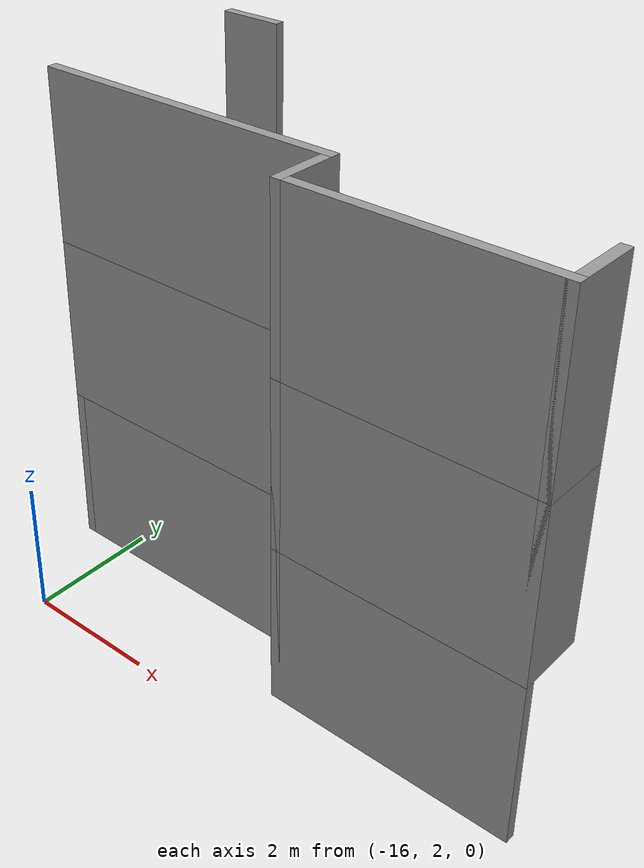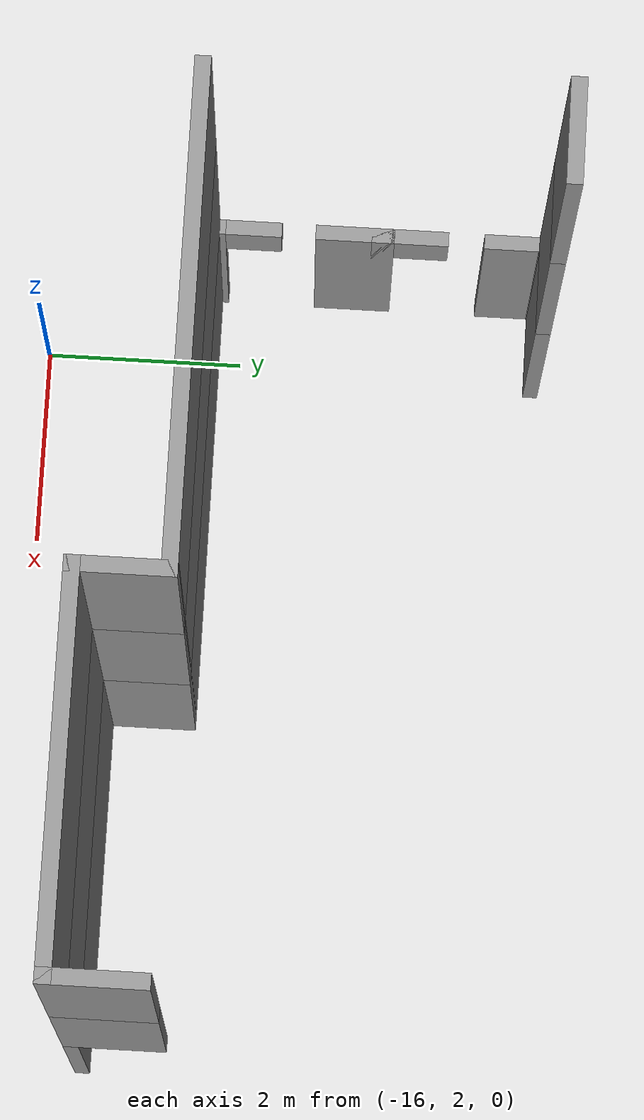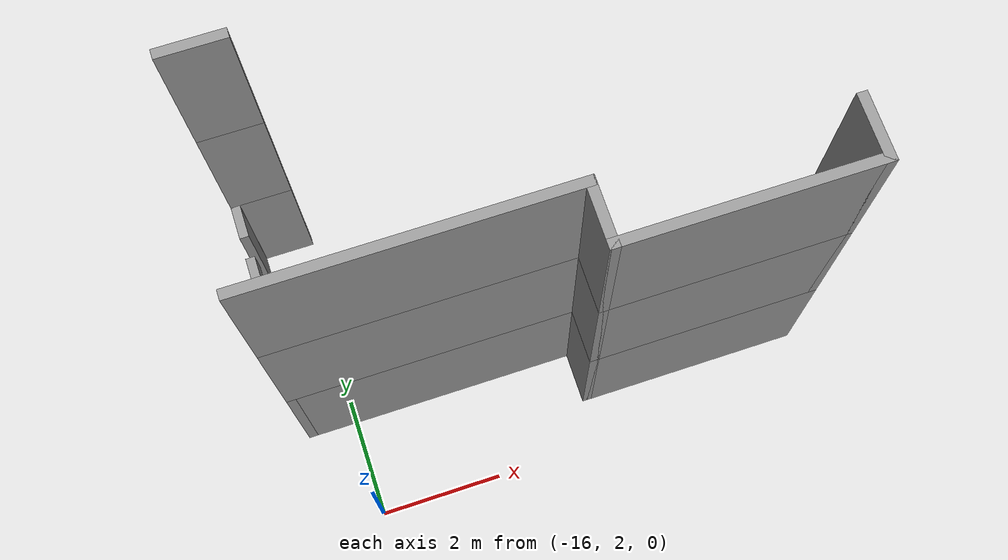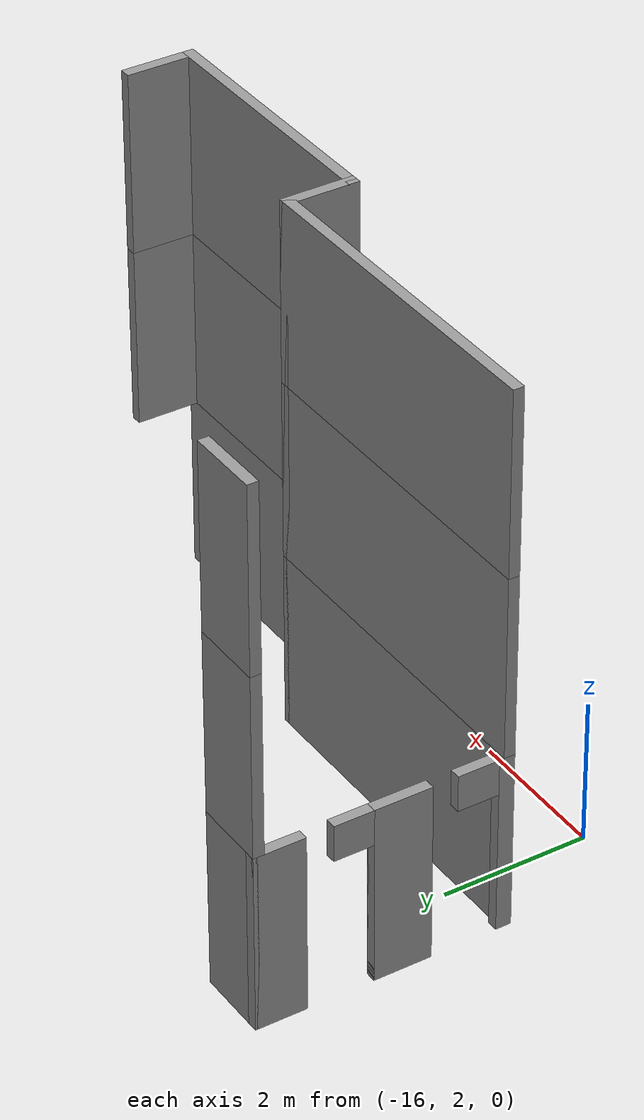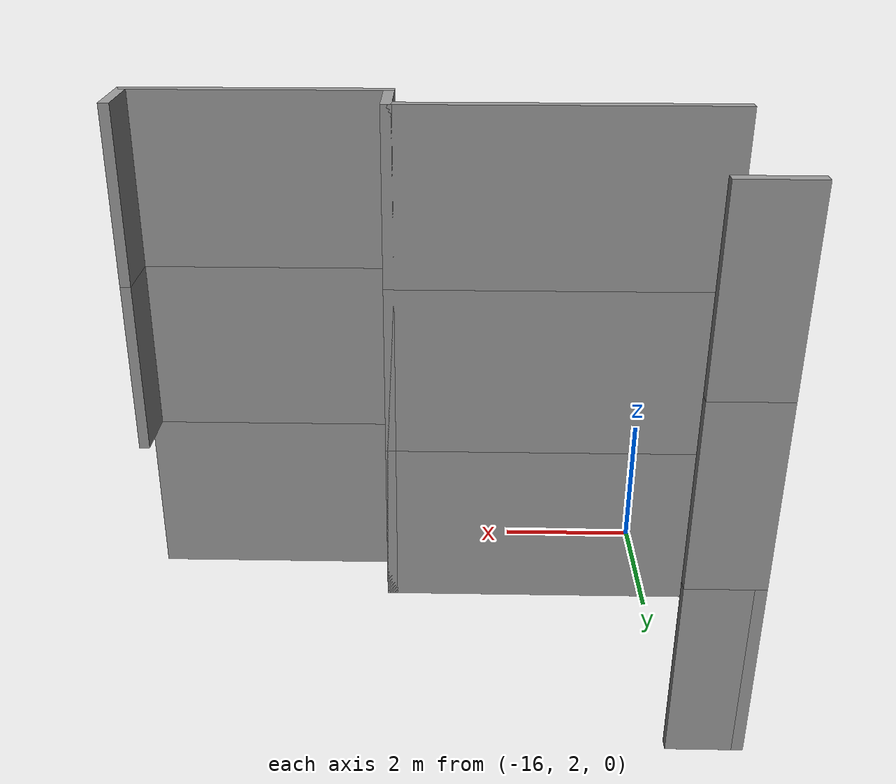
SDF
<sdf version="1.7">
 <model name="mapagazebo">
  <pose>-4.67869 9.01252 0 0 -0 0</pose>
  <link name="Wall_1107">
   <collision name="Wall_1107_Collision">
    <geometry><box><size>1 0.15 2.5</size></box></geometry>
    <pose>0 0 1.25 0 -0 0</pose>
   </collision>
   <visual name="Wall_1107_Visual">
    <pose>0 0 1.25 0 -0 0</pose>
    <geometry><box><size>1 0.15 2.5</size></box></geometry>
    <material>
     <script><uri>file://media/materials/scripts/gazebo.material</uri><name>Gazebo/Grey</name></script>
     <ambient>1 1 1 1</ambient>
    </material>
    <meta><layer>1</layer></meta>
   </visual>
   <pose>-11.6596 -1.95647 2.5 0 -0 0</pose>
  </link>
  <link name="Wall_1140">
   <collision name="Wall_1140_Collision">
    <geometry><box><size>4.75 0.15 2.5</size></box></geometry>
    <pose>0 0 1.25 0 -0 0</pose>
   </collision>
   <visual name="Wall_1140_Visual">
    <pose>0 0 1.25 0 -0 0</pose>
    <geometry><box><size>4.75 0.15 2.5</size></box></geometry>
    <material>
     <script><uri>file://media/materials/scripts/gazebo.material</uri><name>Gazebo/Grey</name></script>
     <ambient>1 1 1 1</ambient>
    </material>
    <meta><layer>1</layer></meta>
   </visual>
   <pose>-9.78459 -5.30647 2.5 0 -0 0</pose>
  </link>
  <link name="Wall_1141">
   <collision name="Wall_1141_Collision">
    <geometry><box><size>1 0.15 2.5</size></box></geometry>
    <pose>0 0 1.25 0 -0 0</pose>
   </collision>
   <visual name="Wall_1141_Visual">
    <pose>0 0 1.25 0 -0 0</pose>
    <geometry><box><size>1 0.15 2.5</size></box></geometry>
    <material>
     <script><uri>file://media/materials/scripts/gazebo.material</uri><name>Gazebo/Grey</name></script>
     <ambient>1 1 1 1</ambient>
    </material>
    <meta><layer>1</layer></meta>
   </visual>
   <pose>-7.48459 -5.73147 2.5 0 -0 -1.5708</pose>
  </link>
  <link name="Wall_1142">
   <collision name="Wall_1142_Collision">
    <geometry><box><size>3.75 0.15 2.5</size></box></geometry>
    <pose>0 0 1.25 0 -0 0</pose>
   </collision>
   <visual name="Wall_1142_Visual">
    <pose>0 0 1.25 0 -0 0</pose>
    <geometry><box><size>3.75 0.15 2.5</size></box></geometry>
    <material>
     <script><uri>file://media/materials/scripts/gazebo.material</uri><name>Gazebo/Grey</name></script>
     <ambient>1 1 1 1</ambient>
    </material>
    <meta><layer>1</layer></meta>
   </visual>
   <pose>-5.68459 -6.15647 2.5 0 -0 0</pose>
  </link>
  <link name="Wall_1143">
   <collision name="Wall_1143_Collision">
    <geometry><box><size>1 0.15 2.5</size></box></geometry>
    <pose>0 0 1.25 0 -0 0</pose>
   </collision>
   <visual name="Wall_1143_Visual">
    <pose>0 0 1.25 0 -0 0</pose>
    <geometry><box><size>1 0.15 2.5</size></box></geometry>
    <material>
     <script><uri>file://media/materials/scripts/gazebo.material</uri><name>Gazebo/Grey</name></script>
     <ambient>1 1 1 1</ambient>
    </material>
    <meta><layer>1</layer></meta>
   </visual>
   <pose>-3.88459 -5.73147 2.5 0 -0 1.5708</pose>
  </link>
  <link name="Wall_1731">
   <collision name="Wall_1731_Collision">
    <geometry><box><size>1 0.15 2.5</size></box></geometry>
    <pose>0 0 1.25 0 -0 0</pose>
   </collision>
   <visual name="Wall_1731_Visual">
    <pose>0 0 1.25 0 -0 0</pose>
    <geometry><box><size>1 0.15 2.5</size></box></geometry>
    <material>
     <script><uri>file://media/materials/scripts/gazebo.material</uri><name>Gazebo/Grey</name></script>
     <ambient>1 1 1 1</ambient>
    </material>
    <meta><layer>2</layer></meta>
   </visual>
   <pose>-11.6596 -1.95647 5 0 -0 0</pose>
  </link>
  <link name="Wall_1764">
   <collision name="Wall_1764_Collision">
    <geometry><box><size>4.75 0.15 2.5</size></box></geometry>
    <pose>0 0 1.25 0 -0 0</pose>
   </collision>
   <visual name="Wall_1764_Visual">
    <pose>0 0 1.25 0 -0 0</pose>
    <geometry><box><size>4.75 0.15 2.5</size></box></geometry>
    <material>
     <script><uri>file://media/materials/scripts/gazebo.material</uri><name>Gazebo/Grey</name></script>
     <ambient>1 1 1 1</ambient>
    </material>
    <meta><layer>2</layer></meta>
   </visual>
   <pose>-9.78459 -5.30647 5 0 -0 0</pose>
  </link>
  <link name="Wall_1765">
   <collision name="Wall_1765_Collision">
    <geometry><box><size>1 0.15 2.5</size></box></geometry>
    <pose>0 0 1.25 0 -0 0</pose>
   </collision>
   <visual name="Wall_1765_Visual">
    <pose>0 0 1.25 0 -0 0</pose>
    <geometry><box><size>1 0.15 2.5</size></box></geometry>
    <material>
     <script><uri>file://media/materials/scripts/gazebo.material</uri><name>Gazebo/Grey</name></script>
     <ambient>1 1 1 1</ambient>
    </material>
    <meta><layer>2</layer></meta>
   </visual>
   <pose>-7.48459 -5.73147 5 0 -0 -1.5708</pose>
  </link>
  <link name="Wall_1766">
   <collision name="Wall_1766_Collision">
    <geometry><box><size>3.75 0.15 2.5</size></box></geometry>
    <pose>0 0 1.25 0 -0 0</pose>
   </collision>
   <visual name="Wall_1766_Visual">
    <pose>0 0 1.25 0 -0 0</pose>
    <geometry><box><size>3.75 0.15 2.5</size></box></geometry>
    <material>
     <script><uri>file://media/materials/scripts/gazebo.material</uri><name>Gazebo/Grey</name></script>
     <ambient>1 1 1 1</ambient>
    </material>
    <meta><layer>2</layer></meta>
   </visual>
   <pose>-5.68459 -6.15647 5 0 -0 0</pose>
  </link>
  <link name="Wall_1767">
   <collision name="Wall_1767_Collision">
    <geometry><box><size>1 0.15 2.5</size></box></geometry>
    <pose>0 0 1.25 0 -0 0</pose>
   </collision>
   <visual name="Wall_1767_Visual">
    <pose>0 0 1.25 0 -0 0</pose>
    <geometry><box><size>1 0.15 2.5</size></box></geometry>
    <material>
     <script><uri>file://media/materials/scripts/gazebo.material</uri><name>Gazebo/Grey</name></script>
     <ambient>1 1 1 1</ambient>
    </material>
    <meta><layer>2</layer></meta>
   </visual>
   <pose>-3.88459 -5.73147 5 0 -0 1.5708</pose>
  </link>
  <link name="Wall_377">
   <pose>-12.0846 -3.63147 0 0 -0 1.5708</pose>
   <visual name="Wall_377_Visual_0">
    <pose>-1.64393 0 1.25 0 -0 0</pose>
    <geometry><box><size>0.212148 0.15 2.5</size></box></geometry>
    <material>
     <script><uri>file://media/materials/scripts/gazebo.material</uri><name>Gazebo/Grey</name></script>
     <ambient>1 1 1 1</ambient>
    </material>
    <meta><layer>0</layer></meta>
   </visual>
   <collision name="Wall_377_Collision_0">
    <geometry><box><size>0.212148 0.15 2.5</size></box></geometry>
    <pose>-1.64393 0 1.25 0 -0 0</pose>
   </collision>
   <visual name="Wall_377_Visual_1">
    <pose>-0.243949 0 1.25 0 -0 0</pose>
    <geometry><box><size>0.787806 0.15 2.5</size></box></geometry>
    <material>
     <script><uri>file://media/materials/scripts/gazebo.material</uri><name>Gazebo/Grey</name></script>
     <ambient>1 1 1 1</ambient>
    </material>
    <meta><layer>0</layer></meta>
   </visual>
   <collision name="Wall_377_Collision_1">
    <geometry><box><size>0.787806 0.15 2.5</size></box></geometry>
    <pose>-0.243949 0 1.25 0 -0 0</pose>
   </collision>
   <visual name="Wall_377_Visual_2">
    <pose>0.037352 0 1.25 0 -0 0</pose>
    <geometry><box><size>0.225204 0.15 2.5</size></box></geometry>
    <material>
     <script><uri>file://media/materials/scripts/gazebo.material</uri><name>Gazebo/Grey</name></script>
     <ambient>1 1 1 1</ambient>
    </material>
    <meta><layer>0</layer></meta>
   </visual>
   <collision name="Wall_377_Collision_2">
    <geometry><box><size>0.225204 0.15 2.5</size></box></geometry>
    <pose>0.037352 0 1.25 0 -0 0</pose>
   </collision>
   <visual name="Wall_377_Visual_3">
    <pose>1.39998 0 1.25 0 -0 0</pose>
    <geometry><box><size>0.700046 0.15 2.5</size></box></geometry>
    <material>
     <script><uri>file://media/materials/scripts/gazebo.material</uri><name>Gazebo/Grey</name></script>
     <ambient>1 1 1 1</ambient>
    </material>
    <meta><layer>0</layer></meta>
   </visual>
   <collision name="Wall_377_Collision_3">
    <geometry><box><size>0.700046 0.15 2.5</size></box></geometry>
    <pose>1.39998 0 1.25 0 -0 0</pose>
   </collision>
   <visual name="Wall_377_Visual_4">
    <pose>1.67086 0 1.25 0 -0 0</pose>
    <geometry><box><size>0.158281 0.15 2.5</size></box></geometry>
    <material>
     <script><uri>file://media/materials/scripts/gazebo.material</uri><name>Gazebo/Grey</name></script>
     <ambient>1 1 1 1</ambient>
    </material>
    <meta><layer>0</layer></meta>
   </visual>
   <collision name="Wall_377_Collision_4">
    <geometry><box><size>0.158281 0.15 2.5</size></box></geometry>
    <pose>1.67086 0 1.25 0 -0 0</pose>
   </collision>
   <visual name="Wall_377_Visual_5">
    <pose>-1.25655 0 2.25 0 -0 0</pose>
    <geometry><box><size>0.562602 0.15 0.5</size></box></geometry>
    <material>
     <script><uri>file://media/materials/scripts/gazebo.material</uri><name>Gazebo/Grey</name></script>
     <ambient>1 1 1 1</ambient>
    </material>
    <meta><layer>0</layer></meta>
   </visual>
   <collision name="Wall_377_Collision_5">
    <geometry><box><size>0.562602 0.15 0.5</size></box></geometry>
    <pose>-1.25655 0 2.25 0 -0 0</pose>
   </collision>
   <visual name="Wall_377_Visual_6">
    <pose>0.420837 0 2.25 0 -0 0</pose>
    <geometry><box><size>0.541765 0.15 0.5</size></box></geometry>
    <material>
     <script><uri>file://media/materials/scripts/gazebo.material</uri><name>Gazebo/Grey</name></script>
     <ambient>1 1 1 1</ambient>
    </material>
    <meta><layer>0</layer></meta>
   </visual>
   <collision name="Wall_377_Collision_6">
    <geometry><box><size>0.541765 0.15 0.5</size></box></geometry>
    <pose>0.420837 0 2.25 0 -0 0</pose>
   </collision>
   <visual name="Wall_377_Visual_7">
    <pose>0.420837 0 2.25 0 -0 0</pose>
    <geometry><box><size>0.541765 0.15 0.5</size></box></geometry>
    <material>
     <script><uri>file://media/materials/scripts/gazebo.material</uri><name>Gazebo/Grey</name></script>
     <ambient>1 1 1 1</ambient>
    </material>
    <meta><layer>0</layer></meta>
   </visual>
   <collision name="Wall_377_Collision_7">
    <geometry><box><size>0.541765 0.15 0.5</size></box></geometry>
    <pose>0.420837 0 2.25 0 -0 0</pose>
   </collision>
  </link>
  <link name="Wall_412">
   <collision name="Wall_412_Collision">
    <geometry><box><size>1 0.15 2.5</size></box></geometry>
    <pose>0 0 1.25 0 -0 0</pose>
   </collision>
   <visual name="Wall_412_Visual">
    <pose>0 0 1.25 0 -0 0</pose>
    <geometry><box><size>1 0.15 2.5</size></box></geometry>
    <material>
     <script><uri>file://media/materials/scripts/gazebo.material</uri><name>Gazebo/Grey</name></script>
     <ambient>1 1 1 1</ambient>
    </material>
    <meta><layer>0</layer></meta>
   </visual>
   <pose>-11.6596 -1.95647 0 0 -0 0</pose>
  </link>
  <link name="Wall_449">
   <collision name="Wall_449_Collision">
    <geometry><box><size>4.75 0.15 2.5</size></box></geometry>
    <pose>0 0 1.25 0 -0 0</pose>
   </collision>
   <visual name="Wall_449_Visual">
    <pose>0 0 1.25 0 -0 0</pose>
    <geometry><box><size>4.75 0.15 2.5</size></box></geometry>
    <material>
     <script><uri>file://media/materials/scripts/gazebo.material</uri><name>Gazebo/Grey</name></script>
     <ambient>1 1 1 1</ambient>
    </material>
    <meta><layer>0</layer></meta>
   </visual>
   <pose>-9.78459 -5.30647 0 0 -0 0</pose>
  </link>
  <link name="Wall_450">
   <collision name="Wall_450_Collision">
    <geometry><box><size>1 0.15 2.5</size></box></geometry>
    <pose>0 0 1.25 0 -0 0</pose>
   </collision>
   <visual name="Wall_450_Visual">
    <pose>0 0 1.25 0 -0 0</pose>
    <geometry><box><size>1 0.15 2.5</size></box></geometry>
    <material>
     <script><uri>file://media/materials/scripts/gazebo.material</uri><name>Gazebo/Grey</name></script>
     <ambient>1 1 1 1</ambient>
    </material>
    <meta><layer>0</layer></meta>
   </visual>
   <pose>-7.48459 -5.73147 0 0 -0 -1.5708</pose>
  </link>
  <link name="Wall_451">
   <collision name="Wall_451_Collision">
    <geometry><box><size>3.75 0.15 2.5</size></box></geometry>
    <pose>0 0 1.25 0 -0 0</pose>
   </collision>
   <visual name="Wall_451_Visual">
    <pose>0 0 1.25 0 -0 0</pose>
    <geometry><box><size>3.75 0.15 2.5</size></box></geometry>
    <material>
     <script><uri>file://media/materials/scripts/gazebo.material</uri><name>Gazebo/Grey</name></script>
     <ambient>1 1 1 1</ambient>
    </material>
    <meta><layer>0</layer></meta>
   </visual>
   <pose>-5.68459 -6.15647 0 0 -0 0</pose>
  </link>
  <static>1</static>
 </model>
</sdf>
